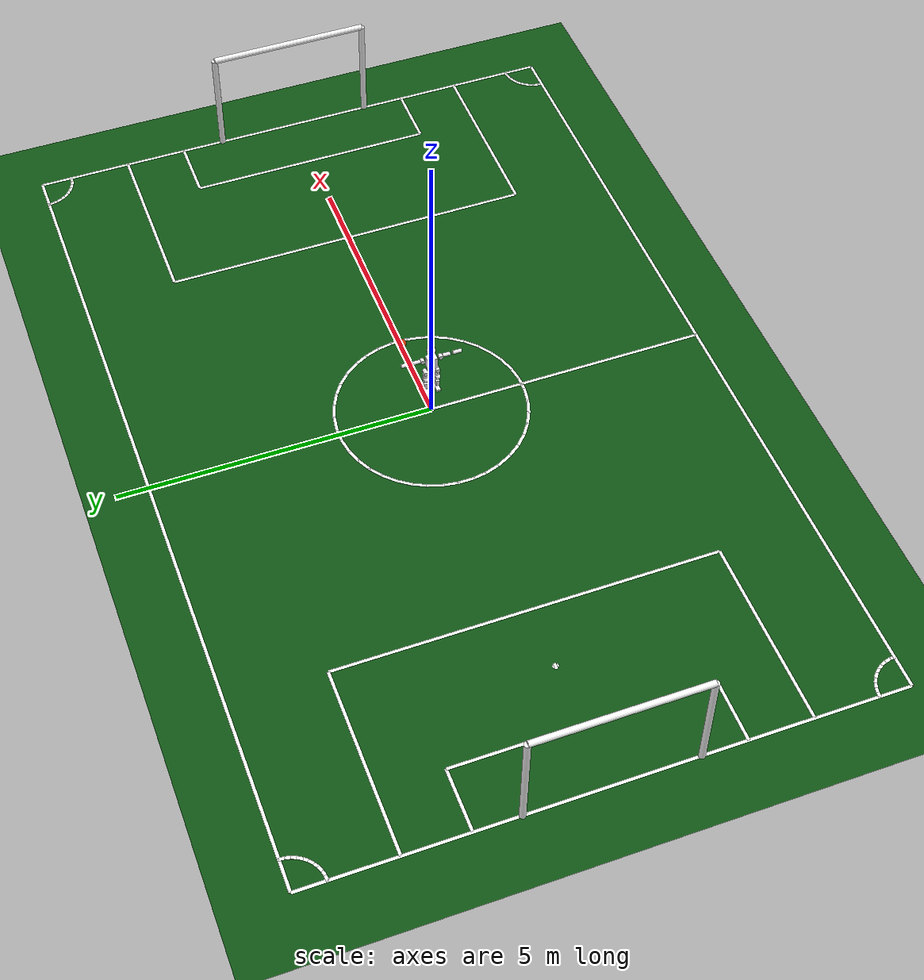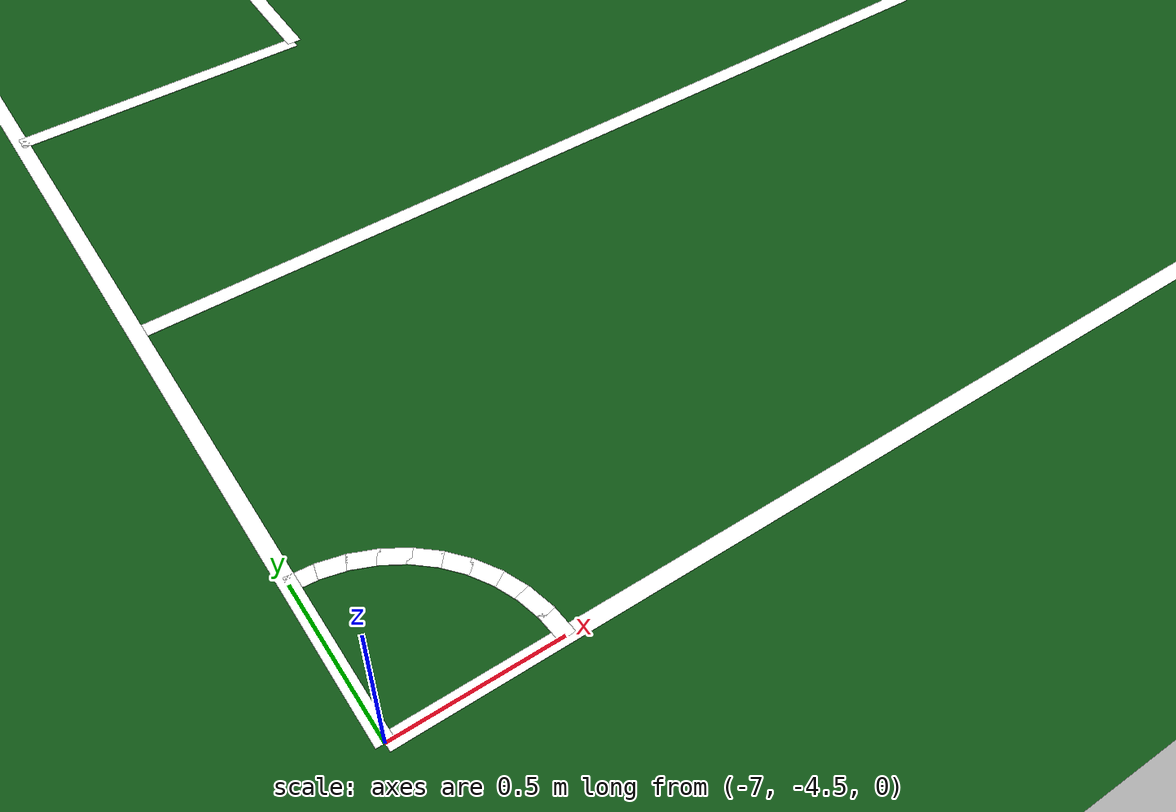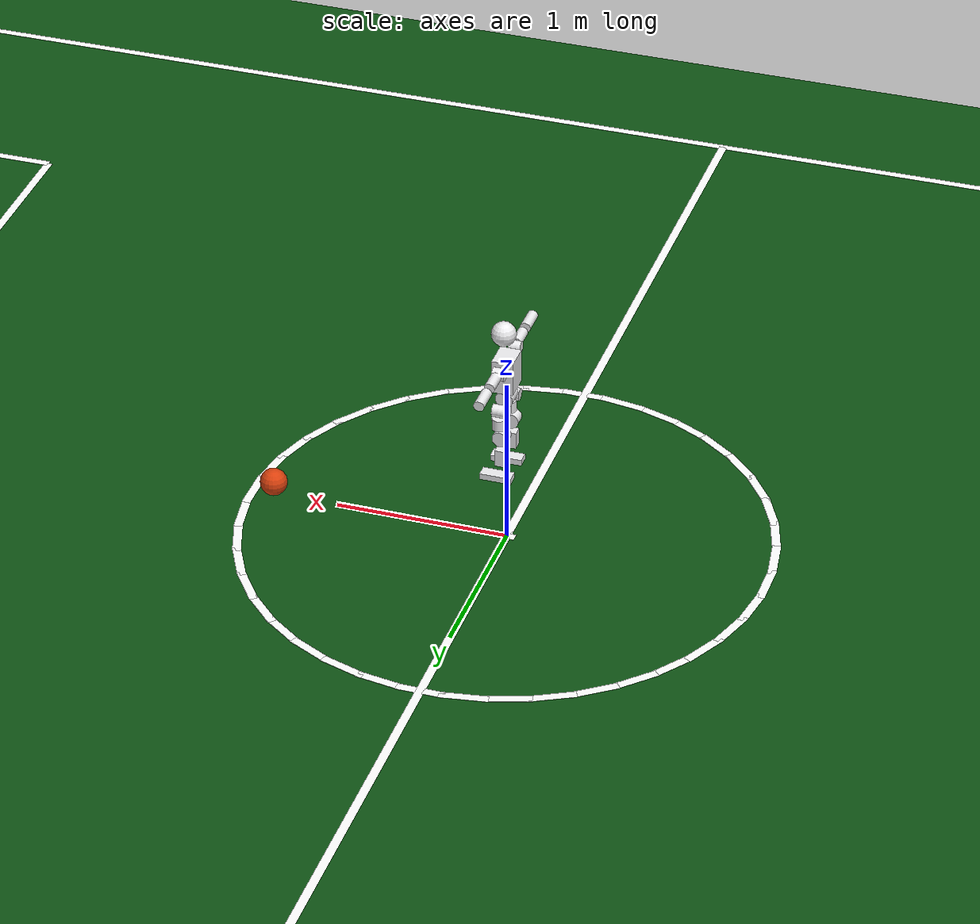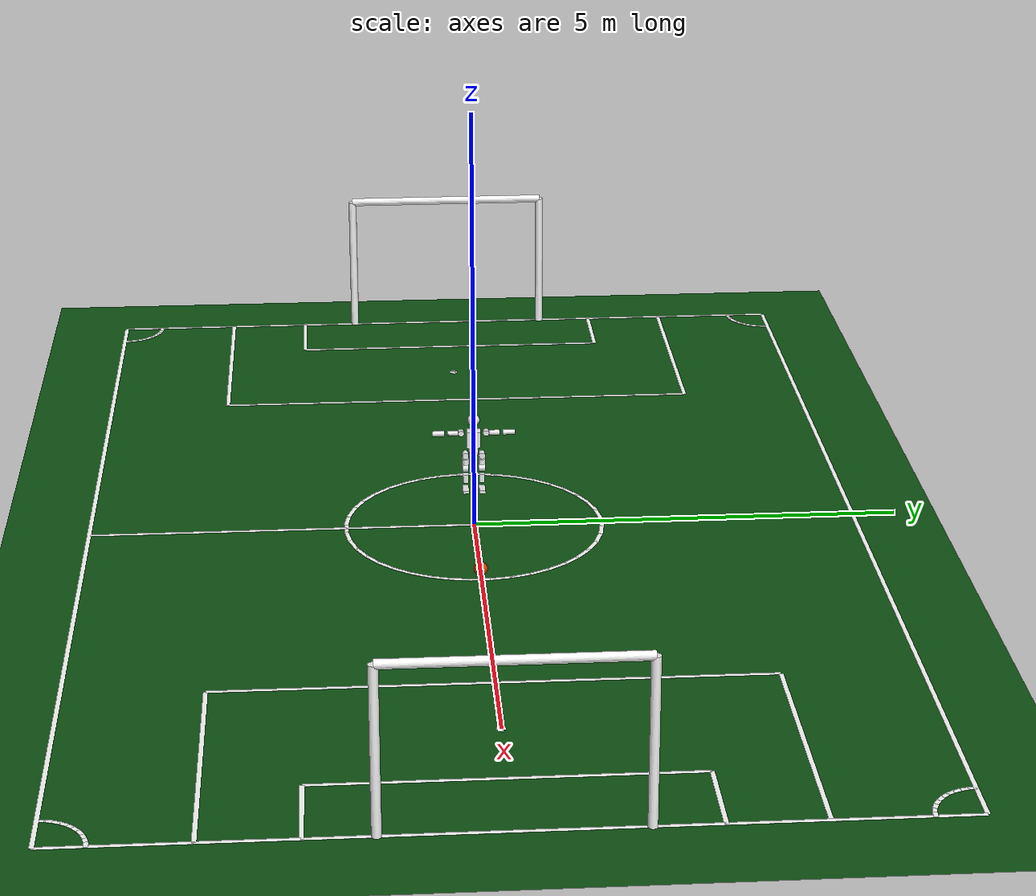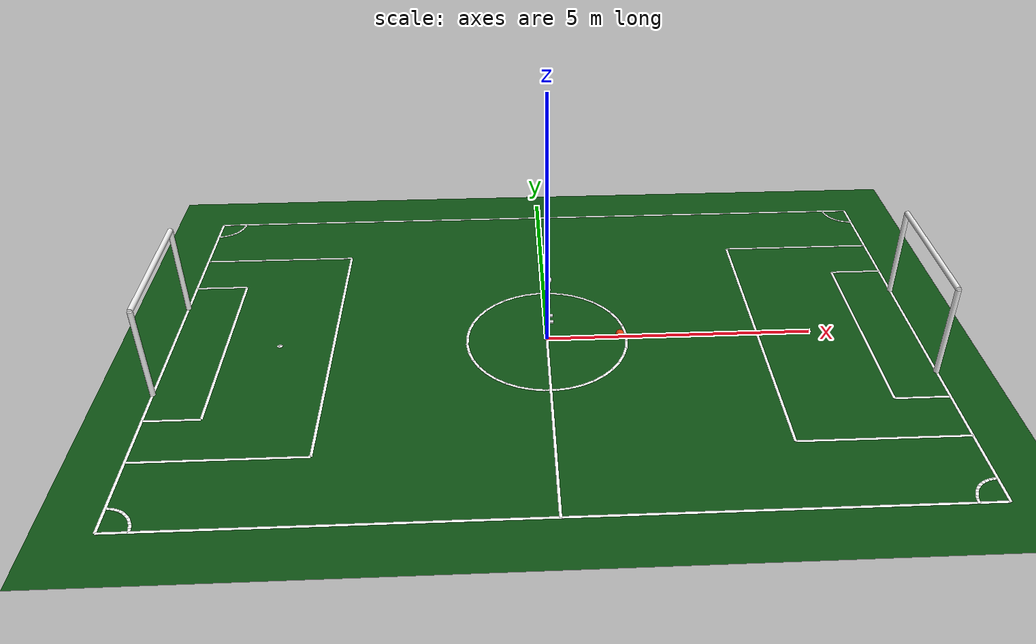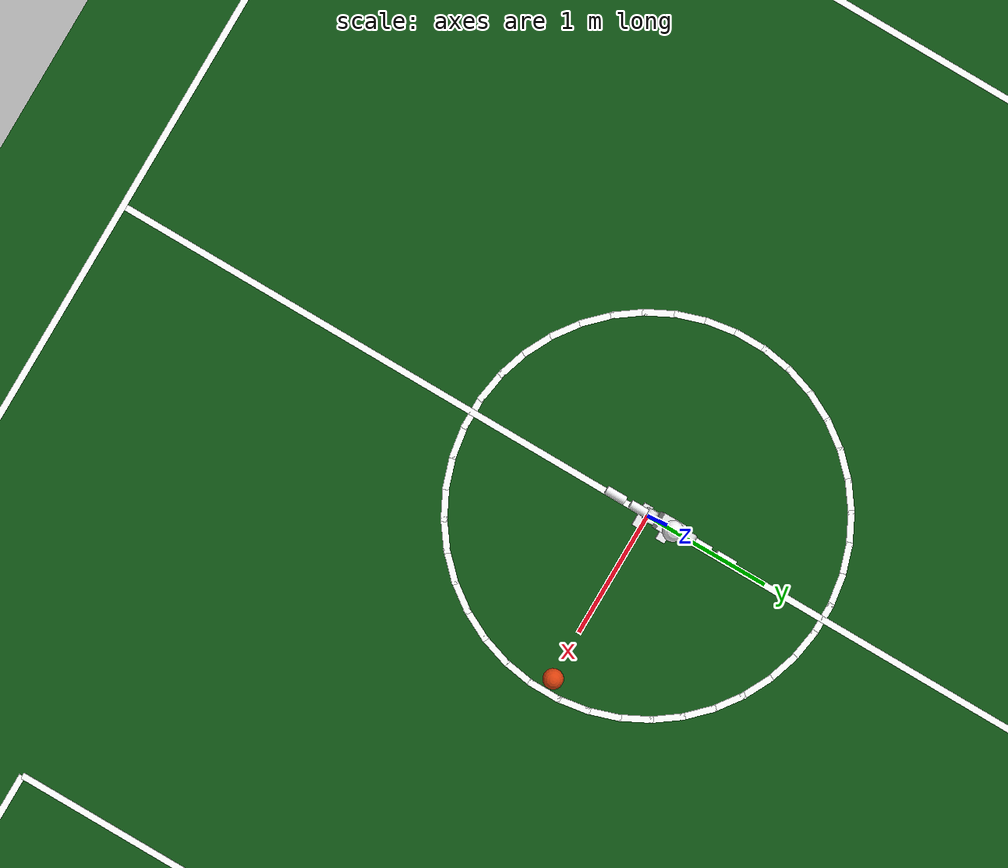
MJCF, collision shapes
<mujoco model="k1_robocup_middle_scene">
  <include file="K1_22dof.xml"/>

  <asset>
    <texture type="skybox" builtin="gradient" rgb1="0.35 0.55 0.75" rgb2="0 0 0" width="512" height="512"/>
    <texture name="grass_tex" type="2d" builtin="checker" rgb1="0.06 0.35 0.08" rgb2="0.05 0.30 0.07"
              width="300" height="300" mark="edge" markrgb="0.08 0.4 0.1"/>
    <material name="grass_mat" texture="grass_tex" texrepeat="22 16" texuniform="true" reflectance="0.05" specular="0.1"/>
    <material name="post_mat" rgba="0.95 0.95 0.95 1"/>
    <material name="ball_mat" rgba="0.85 0.25 0.05 1"/>
    <!-- NUpbr ball_001 asset (mesh normalised to unit radius in Blender, UVs preserved) -->
    <mesh name="ball_visual" file="ball_001.obj" scale="0.0785 0.0785 0.0785"/>
    <texture name="ball_tex" type="2d" file="meshes/ball_001_color.png"/>
    <material name="ball_tex_mat" texture="ball_tex" specular="0.3" shininess="0.4"/>
  </asset>

  <visual>
    <headlight ambient="0.35 0.35 0.35" diffuse="0.5 0.5 0.5" specular="0.2 0.2 0.2"/>
    <rgba haze="0.15 0.25 0.35 1"/>
  </visual>

  <worldbody>
    <light name="sun1" directional="true" pos="3 2 6" dir="-0.4 -0.3 -1" diffuse="0.7 0.7 0.65" specular="0.2 0.2 0.2" castshadow="true"/>
    <light name="sun2" directional="true" pos="-3 -2 6" dir="0.3 0.2 -1" diffuse="0.35 0.35 0.35" specular="0.05 0.05 0.05" castshadow="false"/>

    <!-- Pitch: half-size 8 x 5.5 m (16 x 11 m total = 14x9 field + 1m border). -->
    <geom name="floor" type="plane" pos="0 0 0" size="8.0 5.5 0.1" material="grass_mat" condim="3" friction="0.8 0.02 0.001"/>
    <!-- Field line markings (touchlines, goal lines, center line/circle/mark, goal areas, penalty areas, penalty marks, corner arcs). -->
      <geom type="box" pos="0.0000 4.5000 0.001" size="7.0000 0.0250 0.001" rgba="1 1 1 1" contype="0" conaffinity="0" group="2"/>
      <geom type="box" pos="0.0000 -4.5000 0.001" size="7.0000 0.0250 0.001" rgba="1 1 1 1" contype="0" conaffinity="0" group="2"/>
      <geom type="box" pos="7.0000 0.0000 0.001" size="0.0250 4.5000 0.001" rgba="1 1 1 1" contype="0" conaffinity="0" group="2"/>
      <geom type="box" pos="-7.0000 0.0000 0.001" size="0.0250 4.5000 0.001" rgba="1 1 1 1" contype="0" conaffinity="0" group="2"/>
      <geom type="box" pos="0.0000 0.0000 0.001" size="0.0250 4.5000 0.001" rgba="1 1 1 1" contype="0" conaffinity="0" group="2"/>
      <geom type="box" pos="6.0000 0.0000 0.001" size="0.0250 2.0000 0.001" rgba="1 1 1 1" contype="0" conaffinity="0" group="2"/>
      <geom type="box" pos="6.5000 2.0000 0.001" size="0.5000 0.0250 0.001" rgba="1 1 1 1" contype="0" conaffinity="0" group="2"/>
      <geom type="box" pos="6.5000 -2.0000 0.001" size="0.5000 0.0250 0.001" rgba="1 1 1 1" contype="0" conaffinity="0" group="2"/>
      <geom type="box" pos="-6.0000 0.0000 0.001" size="0.0250 2.0000 0.001" rgba="1 1 1 1" contype="0" conaffinity="0" group="2"/>
      <geom type="box" pos="-6.5000 2.0000 0.001" size="0.5000 0.0250 0.001" rgba="1 1 1 1" contype="0" conaffinity="0" group="2"/>
      <geom type="box" pos="-6.5000 -2.0000 0.001" size="0.5000 0.0250 0.001" rgba="1 1 1 1" contype="0" conaffinity="0" group="2"/>
      <geom type="box" pos="4.0000 0.0000 0.001" size="0.0250 3.0000 0.001" rgba="1 1 1 1" contype="0" conaffinity="0" group="2"/>
      <geom type="box" pos="5.5000 3.0000 0.001" size="1.5000 0.0250 0.001" rgba="1 1 1 1" contype="0" conaffinity="0" group="2"/>
      <geom type="box" pos="5.5000 -3.0000 0.001" size="1.5000 0.0250 0.001" rgba="1 1 1 1" contype="0" conaffinity="0" group="2"/>
      <geom type="box" pos="-4.0000 0.0000 0.001" size="0.0250 3.0000 0.001" rgba="1 1 1 1" contype="0" conaffinity="0" group="2"/>
      <geom type="box" pos="-5.5000 3.0000 0.001" size="1.5000 0.0250 0.001" rgba="1 1 1 1" contype="0" conaffinity="0" group="2"/>
      <geom type="box" pos="-5.5000 -3.0000 0.001" size="1.5000 0.0250 0.001" rgba="1 1 1 1" contype="0" conaffinity="0" group="2"/>
      <geom type="box" pos="1.5000 0.0000 0.001" quat="0.707107 0 0 0.707107" size="0.1355 0.0250 0.001" rgba="1 1 1 1" contype="0" conaffinity="0" group="2"/>
      <geom type="box" pos="1.4815 0.2347 0.001" quat="0.649448 0 0 0.760406" size="0.1355 0.0250 0.001" rgba="1 1 1 1" contype="0" conaffinity="0" group="2"/>
      <geom type="box" pos="1.4266 0.4635 0.001" quat="0.587785 0 0 0.809017" size="0.1355 0.0250 0.001" rgba="1 1 1 1" contype="0" conaffinity="0" group="2"/>
      <geom type="box" pos="1.3365 0.6810 0.001" quat="0.522499 0 0 0.852640" size="0.1355 0.0250 0.001" rgba="1 1 1 1" contype="0" conaffinity="0" group="2"/>
      <geom type="box" pos="1.2135 0.8817 0.001" quat="0.453990 0 0 0.891007" size="0.1355 0.0250 0.001" rgba="1 1 1 1" contype="0" conaffinity="0" group="2"/>
      <geom type="box" pos="1.0607 1.0607 0.001" quat="0.382683 0 0 0.923880" size="0.1355 0.0250 0.001" rgba="1 1 1 1" contype="0" conaffinity="0" group="2"/>
      <geom type="box" pos="0.8817 1.2135 0.001" quat="0.309017 0 0 0.951057" size="0.1355 0.0250 0.001" rgba="1 1 1 1" contype="0" conaffinity="0" group="2"/>
      <geom type="box" pos="0.6810 1.3365 0.001" quat="0.233445 0 0 0.972370" size="0.1355 0.0250 0.001" rgba="1 1 1 1" contype="0" conaffinity="0" group="2"/>
      <geom type="box" pos="0.4635 1.4266 0.001" quat="0.156434 0 0 0.987688" size="0.1355 0.0250 0.001" rgba="1 1 1 1" contype="0" conaffinity="0" group="2"/>
      <geom type="box" pos="0.2347 1.4815 0.001" quat="0.078459 0 0 0.996917" size="0.1355 0.0250 0.001" rgba="1 1 1 1" contype="0" conaffinity="0" group="2"/>
      <geom type="box" pos="0.0000 1.5000 0.001" quat="0.000000 0 0 1.000000" size="0.1355 0.0250 0.001" rgba="1 1 1 1" contype="0" conaffinity="0" group="2"/>
      <geom type="box" pos="-0.2347 1.4815 0.001" quat="-0.078459 0 0 0.996917" size="0.1355 0.0250 0.001" rgba="1 1 1 1" contype="0" conaffinity="0" group="2"/>
      <geom type="box" pos="-0.4635 1.4266 0.001" quat="-0.156434 0 0 0.987688" size="0.1355 0.0250 0.001" rgba="1 1 1 1" contype="0" conaffinity="0" group="2"/>
      <geom type="box" pos="-0.6810 1.3365 0.001" quat="-0.233445 0 0 0.972370" size="0.1355 0.0250 0.001" rgba="1 1 1 1" contype="0" conaffinity="0" group="2"/>
      <geom type="box" pos="-0.8817 1.2135 0.001" quat="-0.309017 0 0 0.951057" size="0.1355 0.0250 0.001" rgba="1 1 1 1" contype="0" conaffinity="0" group="2"/>
      <geom type="box" pos="-1.0607 1.0607 0.001" quat="-0.382683 0 0 0.923880" size="0.1355 0.0250 0.001" rgba="1 1 1 1" contype="0" conaffinity="0" group="2"/>
      <geom type="box" pos="-1.2135 0.8817 0.001" quat="-0.453990 0 0 0.891007" size="0.1355 0.0250 0.001" rgba="1 1 1 1" contype="0" conaffinity="0" group="2"/>
      <geom type="box" pos="-1.3365 0.6810 0.001" quat="-0.522499 0 0 0.852640" size="0.1355 0.0250 0.001" rgba="1 1 1 1" contype="0" conaffinity="0" group="2"/>
      <geom type="box" pos="-1.4266 0.4635 0.001" quat="-0.587785 0 0 0.809017" size="0.1355 0.0250 0.001" rgba="1 1 1 1" contype="0" conaffinity="0" group="2"/>
      <geom type="box" pos="-1.4815 0.2347 0.001" quat="-0.649448 0 0 0.760406" size="0.1355 0.0250 0.001" rgba="1 1 1 1" contype="0" conaffinity="0" group="2"/>
      <geom type="box" pos="-1.5000 0.0000 0.001" quat="-0.707107 0 0 0.707107" size="0.1355 0.0250 0.001" rgba="1 1 1 1" contype="0" conaffinity="0" group="2"/>
      <geom type="box" pos="-1.4815 -0.2347 0.001" quat="-0.760406 0 0 0.649448" size="0.1355 0.0250 0.001" rgba="1 1 1 1" contype="0" conaffinity="0" group="2"/>
      <geom type="box" pos="-1.4266 -0.4635 0.001" quat="-0.809017 0 0 0.587785" size="0.1355 0.0250 0.001" rgba="1 1 1 1" contype="0" conaffinity="0" group="2"/>
      <geom type="box" pos="-1.3365 -0.6810 0.001" quat="-0.852640 0 0 0.522499" size="0.1355 0.0250 0.001" rgba="1 1 1 1" contype="0" conaffinity="0" group="2"/>
      <geom type="box" pos="-1.2135 -0.8817 0.001" quat="-0.891007 0 0 0.453990" size="0.1355 0.0250 0.001" rgba="1 1 1 1" contype="0" conaffinity="0" group="2"/>
      <geom type="box" pos="-1.0607 -1.0607 0.001" quat="-0.923880 0 0 0.382683" size="0.1355 0.0250 0.001" rgba="1 1 1 1" contype="0" conaffinity="0" group="2"/>
      <geom type="box" pos="-0.8817 -1.2135 0.001" quat="-0.951057 0 0 0.309017" size="0.1355 0.0250 0.001" rgba="1 1 1 1" contype="0" conaffinity="0" group="2"/>
      <geom type="box" pos="-0.6810 -1.3365 0.001" quat="-0.972370 0 0 0.233445" size="0.1355 0.0250 0.001" rgba="1 1 1 1" contype="0" conaffinity="0" group="2"/>
      <geom type="box" pos="-0.4635 -1.4266 0.001" quat="-0.987688 0 0 0.156434" size="0.1355 0.0250 0.001" rgba="1 1 1 1" contype="0" conaffinity="0" group="2"/>
      <geom type="box" pos="-0.2347 -1.4815 0.001" quat="-0.996917 0 0 0.078459" size="0.1355 0.0250 0.001" rgba="1 1 1 1" contype="0" conaffinity="0" group="2"/>
      <geom type="box" pos="-0.0000 -1.5000 0.001" quat="-1.000000 0 0 0.000000" size="0.1355 0.0250 0.001" rgba="1 1 1 1" contype="0" conaffinity="0" group="2"/>
      <geom type="box" pos="0.2347 -1.4815 0.001" quat="-0.996917 0 0 -0.078459" size="0.1355 0.0250 0.001" rgba="1 1 1 1" contype="0" conaffinity="0" group="2"/>
      <geom type="box" pos="0.4635 -1.4266 0.001" quat="-0.987688 0 0 -0.156434" size="0.1355 0.0250 0.001" rgba="1 1 1 1" contype="0" conaffinity="0" group="2"/>
      <geom type="box" pos="0.6810 -1.3365 0.001" quat="-0.972370 0 0 -0.233445" size="0.1355 0.0250 0.001" rgba="1 1 1 1" contype="0" conaffinity="0" group="2"/>
      <geom type="box" pos="0.8817 -1.2135 0.001" quat="-0.951057 0 0 -0.309017" size="0.1355 0.0250 0.001" rgba="1 1 1 1" contype="0" conaffinity="0" group="2"/>
      <geom type="box" pos="1.0607 -1.0607 0.001" quat="-0.923880 0 0 -0.382683" size="0.1355 0.0250 0.001" rgba="1 1 1 1" contype="0" conaffinity="0" group="2"/>
      <geom type="box" pos="1.2135 -0.8817 0.001" quat="-0.891007 0 0 -0.453990" size="0.1355 0.0250 0.001" rgba="1 1 1 1" contype="0" conaffinity="0" group="2"/>
      <geom type="box" pos="1.3365 -0.6810 0.001" quat="-0.852640 0 0 -0.522499" size="0.1355 0.0250 0.001" rgba="1 1 1 1" contype="0" conaffinity="0" group="2"/>
      <geom type="box" pos="1.4266 -0.4635 0.001" quat="-0.809017 0 0 -0.587785" size="0.1355 0.0250 0.001" rgba="1 1 1 1" contype="0" conaffinity="0" group="2"/>
      <geom type="box" pos="1.4815 -0.2347 0.001" quat="-0.760406 0 0 -0.649448" size="0.1355 0.0250 0.001" rgba="1 1 1 1" contype="0" conaffinity="0" group="2"/>
      <geom type="box" pos="0 0 0.001" size="0.0500 0.0250 0.001" rgba="1 1 1 1" contype="0" conaffinity="0" group="2"/>
      <geom type="box" pos="0 0 0.001" size="0.0250 0.0500 0.001" rgba="1 1 1 1" contype="0" conaffinity="0" group="2"/>
      <geom type="box" pos="5.0000 0 0.001" size="0.0500 0.0250 0.001" rgba="1 1 1 1" contype="0" conaffinity="0" group="2"/>
      <geom type="box" pos="5.0000 0 0.001" size="0.0250 0.0500 0.001" rgba="1 1 1 1" contype="0" conaffinity="0" group="2"/>
      <geom type="box" pos="-5.0000 0 0.001" size="0.0500 0.0250 0.001" rgba="1 1 1 1" contype="0" conaffinity="0" group="2"/>
      <geom type="box" pos="-5.0000 0 0.001" size="0.0250 0.0500 0.001" rgba="1 1 1 1" contype="0" conaffinity="0" group="2"/>
      <geom type="box" pos="6.5015 4.4608 0.001" quat="0.734323 0 0 -0.678801" size="0.0452 0.0250 0.001" rgba="1 1 1 1" contype="0" conaffinity="0" group="2"/>
      <geom type="box" pos="6.5138 4.3833 0.001" quat="0.785317 0 0 -0.619094" size="0.0452 0.0250 0.001" rgba="1 1 1 1" contype="0" conaffinity="0" group="2"/>
      <geom type="box" pos="6.5381 4.3087 0.001" quat="0.831470 0 0 -0.555570" size="0.0452 0.0250 0.001" rgba="1 1 1 1" contype="0" conaffinity="0" group="2"/>
      <geom type="box" pos="6.5737 4.2388 0.001" quat="0.872496 0 0 -0.488621" size="0.0452 0.0250 0.001" rgba="1 1 1 1" contype="0" conaffinity="0" group="2"/>
      <geom type="box" pos="6.6198 4.1753 0.001" quat="0.908143 0 0 -0.418660" size="0.0452 0.0250 0.001" rgba="1 1 1 1" contype="0" conaffinity="0" group="2"/>
      <geom type="box" pos="6.6753 4.1198 0.001" quat="0.938191 0 0 -0.346117" size="0.0452 0.0250 0.001" rgba="1 1 1 1" contype="0" conaffinity="0" group="2"/>
      <geom type="box" pos="6.7388 4.0737 0.001" quat="0.962455 0 0 -0.271440" size="0.0452 0.0250 0.001" rgba="1 1 1 1" contype="0" conaffinity="0" group="2"/>
      <geom type="box" pos="6.8087 4.0381 0.001" quat="0.980785 0 0 -0.195090" size="0.0452 0.0250 0.001" rgba="1 1 1 1" contype="0" conaffinity="0" group="2"/>
      <geom type="box" pos="6.8833 4.0138 0.001" quat="0.993068 0 0 -0.117537" size="0.0452 0.0250 0.001" rgba="1 1 1 1" contype="0" conaffinity="0" group="2"/>
      <geom type="box" pos="6.9608 4.0015 0.001" quat="0.999229 0 0 -0.039260" size="0.0452 0.0250 0.001" rgba="1 1 1 1" contype="0" conaffinity="0" group="2"/>
      <geom type="box" pos="-6.9608 4.0015 0.001" quat="0.999229 0 0 0.039260" size="0.0452 0.0250 0.001" rgba="1 1 1 1" contype="0" conaffinity="0" group="2"/>
      <geom type="box" pos="-6.8833 4.0138 0.001" quat="0.993068 0 0 0.117537" size="0.0452 0.0250 0.001" rgba="1 1 1 1" contype="0" conaffinity="0" group="2"/>
      <geom type="box" pos="-6.8087 4.0381 0.001" quat="0.980785 0 0 0.195090" size="0.0452 0.0250 0.001" rgba="1 1 1 1" contype="0" conaffinity="0" group="2"/>
      <geom type="box" pos="-6.7388 4.0737 0.001" quat="0.962455 0 0 0.271440" size="0.0452 0.0250 0.001" rgba="1 1 1 1" contype="0" conaffinity="0" group="2"/>
      <geom type="box" pos="-6.6753 4.1198 0.001" quat="0.938191 0 0 0.346117" size="0.0452 0.0250 0.001" rgba="1 1 1 1" contype="0" conaffinity="0" group="2"/>
      <geom type="box" pos="-6.6198 4.1753 0.001" quat="0.908143 0 0 0.418660" size="0.0452 0.0250 0.001" rgba="1 1 1 1" contype="0" conaffinity="0" group="2"/>
      <geom type="box" pos="-6.5737 4.2388 0.001" quat="0.872496 0 0 0.488621" size="0.0452 0.0250 0.001" rgba="1 1 1 1" contype="0" conaffinity="0" group="2"/>
      <geom type="box" pos="-6.5381 4.3087 0.001" quat="0.831470 0 0 0.555570" size="0.0452 0.0250 0.001" rgba="1 1 1 1" contype="0" conaffinity="0" group="2"/>
      <geom type="box" pos="-6.5138 4.3833 0.001" quat="0.785317 0 0 0.619094" size="0.0452 0.0250 0.001" rgba="1 1 1 1" contype="0" conaffinity="0" group="2"/>
      <geom type="box" pos="-6.5015 4.4608 0.001" quat="0.734323 0 0 0.678801" size="0.0452 0.0250 0.001" rgba="1 1 1 1" contype="0" conaffinity="0" group="2"/>
      <geom type="box" pos="-6.5015 -4.4608 0.001" quat="0.678801 0 0 0.734323" size="0.0452 0.0250 0.001" rgba="1 1 1 1" contype="0" conaffinity="0" group="2"/>
      <geom type="box" pos="-6.5138 -4.3833 0.001" quat="0.619094 0 0 0.785317" size="0.0452 0.0250 0.001" rgba="1 1 1 1" contype="0" conaffinity="0" group="2"/>
      <geom type="box" pos="-6.5381 -4.3087 0.001" quat="0.555570 0 0 0.831470" size="0.0452 0.0250 0.001" rgba="1 1 1 1" contype="0" conaffinity="0" group="2"/>
      <geom type="box" pos="-6.5737 -4.2388 0.001" quat="0.488621 0 0 0.872496" size="0.0452 0.0250 0.001" rgba="1 1 1 1" contype="0" conaffinity="0" group="2"/>
      <geom type="box" pos="-6.6198 -4.1753 0.001" quat="0.418660 0 0 0.908143" size="0.0452 0.0250 0.001" rgba="1 1 1 1" contype="0" conaffinity="0" group="2"/>
      <geom type="box" pos="-6.6753 -4.1198 0.001" quat="0.346117 0 0 0.938191" size="0.0452 0.0250 0.001" rgba="1 1 1 1" contype="0" conaffinity="0" group="2"/>
      <geom type="box" pos="-6.7388 -4.0737 0.001" quat="0.271440 0 0 0.962455" size="0.0452 0.0250 0.001" rgba="1 1 1 1" contype="0" conaffinity="0" group="2"/>
      <geom type="box" pos="-6.8087 -4.0381 0.001" quat="0.195090 0 0 0.980785" size="0.0452 0.0250 0.001" rgba="1 1 1 1" contype="0" conaffinity="0" group="2"/>
      <geom type="box" pos="-6.8833 -4.0138 0.001" quat="0.117537 0 0 0.993068" size="0.0452 0.0250 0.001" rgba="1 1 1 1" contype="0" conaffinity="0" group="2"/>
      <geom type="box" pos="-6.9608 -4.0015 0.001" quat="0.039260 0 0 0.999229" size="0.0452 0.0250 0.001" rgba="1 1 1 1" contype="0" conaffinity="0" group="2"/>
      <geom type="box" pos="6.9608 -4.0015 0.001" quat="-0.039260 0 0 0.999229" size="0.0452 0.0250 0.001" rgba="1 1 1 1" contype="0" conaffinity="0" group="2"/>
      <geom type="box" pos="6.8833 -4.0138 0.001" quat="-0.117537 0 0 0.993068" size="0.0452 0.0250 0.001" rgba="1 1 1 1" contype="0" conaffinity="0" group="2"/>
      <geom type="box" pos="6.8087 -4.0381 0.001" quat="-0.195090 0 0 0.980785" size="0.0452 0.0250 0.001" rgba="1 1 1 1" contype="0" conaffinity="0" group="2"/>
      <geom type="box" pos="6.7388 -4.0737 0.001" quat="-0.271440 0 0 0.962455" size="0.0452 0.0250 0.001" rgba="1 1 1 1" contype="0" conaffinity="0" group="2"/>
      <geom type="box" pos="6.6753 -4.1198 0.001" quat="-0.346117 0 0 0.938191" size="0.0452 0.0250 0.001" rgba="1 1 1 1" contype="0" conaffinity="0" group="2"/>
      <geom type="box" pos="6.6198 -4.1753 0.001" quat="-0.418660 0 0 0.908143" size="0.0452 0.0250 0.001" rgba="1 1 1 1" contype="0" conaffinity="0" group="2"/>
      <geom type="box" pos="6.5737 -4.2388 0.001" quat="-0.488621 0 0 0.872496" size="0.0452 0.0250 0.001" rgba="1 1 1 1" contype="0" conaffinity="0" group="2"/>
      <geom type="box" pos="6.5381 -4.3087 0.001" quat="-0.555570 0 0 0.831470" size="0.0452 0.0250 0.001" rgba="1 1 1 1" contype="0" conaffinity="0" group="2"/>
      <geom type="box" pos="6.5138 -4.3833 0.001" quat="-0.619094 0 0 0.785317" size="0.0452 0.0250 0.001" rgba="1 1 1 1" contype="0" conaffinity="0" group="2"/>
      <geom type="box" pos="6.5015 -4.4608 0.001" quat="-0.678801 0 0 0.734323" size="0.0452 0.0250 0.001" rgba="1 1 1 1" contype="0" conaffinity="0" group="2"/>

    <!-- Goals: HSL M-Field, 2.6 m wide (post-center to post-center), 1.8 m high, post radius 0.05 m, at x=+-7. -->
    <body name="goal_pos_x" pos="7 0 0">
      <geom name="goal_pos_x_post1" type="cylinder" fromto="0 1.3 0  0 1.3 1.8" size="0.05" material="post_mat" contype="1" conaffinity="1"/>
      <geom name="goal_pos_x_post2" type="cylinder" fromto="0 -1.3 0  0 -1.3 1.8" size="0.05" material="post_mat" contype="1" conaffinity="1"/>
      <geom name="goal_pos_x_bar" type="cylinder" fromto="0 -1.3 1.8  0 1.3 1.8" size="0.05" material="post_mat" contype="1" conaffinity="1"/>
    </body>
    <body name="goal_neg_x" pos="-7 0 0">
      <geom name="goal_neg_x_post1" type="cylinder" fromto="0 1.3 0  0 1.3 1.8" size="0.05" material="post_mat" contype="1" conaffinity="1"/>
      <geom name="goal_neg_x_post2" type="cylinder" fromto="0 -1.3 0  0 -1.3 1.8" size="0.05" material="post_mat" contype="1" conaffinity="1"/>
      <geom name="goal_neg_x_bar" type="cylinder" fromto="0 -1.3 1.8  0 1.3 1.8" size="0.05" material="post_mat" contype="1" conaffinity="1"/>
    </body>

    <body name="ball" pos="0 0 0">
      <freejoint name="ball_free"/>
      <!-- Collision sphere kept invisible (group 3); visuals come from the textured
           NUpbr ball mesh below so rendered imagery matches the Yolo training data. -->
      <geom name="ball" type="sphere" size="0.0785" pos="1.38 0 0.0785" mass="0.29"
            friction="0.5 0.005 0.0001" material="ball_mat" priority="1"
            group="3" rgba="0.85 0.25 0.05 0"/>
      <geom type="mesh" mesh="ball_visual" pos="1.38 0 0.0785" material="ball_tex_mat"
            contype="0" conaffinity="0" density="0" group="1"/>
    </body>
  </worldbody>

  <contact>
    <pair geom1="ball" geom2="floor" condim="6" friction="0.5 0.5 0.005 0.01 0.01" solref="0.02 0.11" solimp="0.9 0.95 0.001 0.5 2"/>
  </contact>

  <keyframe>
    <key name="kickoff"
         qpos="-3.0 0 0.555 1 0 0 0
               0 0
               0 -1.3 0 0
               0 1.3 0 0
               0 0 0 0 0 0
               0 0 0 0 0 0"/>
    <key name="own_bottom_left"
         qpos="-6.0 -4.0 0.555 1 0 0 0
               0 0
               0 -1.3 0 0
               0 1.3 0 0
               0 0 0 0 0 0
               0 0 0 0 0 0"/>
    <key name="goalie"
         qpos="-6.8 0 0.555 1 0 0 0
               0 0
               0 -1.3 0 0
               0 1.3 0 0
               0 0 0 0 0 0
               0 0 0 0 0 0"/>
  </keyframe>
</mujoco>

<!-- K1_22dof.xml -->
<mujoco model="K1">
  <compiler angle="radian" meshdir="meshes/" autolimits="true"/>

  <option timestep="0.001" tolerance="1e-6" impratio="10" solver="Newton"/>
  <default>
    <geom solimp="0.90 0.95 0.001" solref="0.001 1"/>
  </default>

  <asset>
    <mesh name="Trunk" file="Trunk.STL"/>
    <mesh name="K1logo" file="K1logo.STL"/>
    <mesh name="Head_1" file="Head_1.STL"/>
    <mesh name="Head_2" file="Head_2.STL"/>
    <mesh name="Left_Arm_1" file="Left_Arm_1.STL"/>
    <mesh name="Left_Arm_2" file="Left_Arm_2.STL"/>
    <mesh name="Left_Arm_3" file="Left_Arm_3.STL"/>
    <mesh name="Left_Arm_4" file="Left_Arm_4.STL"/>
    <mesh name="Right_Arm_1" file="Right_Arm_1.STL"/>
    <mesh name="Right_Arm_2" file="Right_Arm_2.STL"/>
    <mesh name="Right_Arm_3" file="Right_Arm_3.STL"/>
    <mesh name="Right_Arm_4" file="Right_Arm_4.STL"/>
    <mesh name="Left_Hip_Pitch" file="Left_Hip_Pitch.STL"/>
    <mesh name="Left_Hip_Roll" file="Left_Hip_Roll.STL"/>
    <mesh name="Left_Hip_Yaw" file="Left_Hip_Yaw.STL"/>
    <mesh name="Left_Shank" file="Left_Shank.STL"/>
    <mesh name="Left_Ankle_Cross" file="Left_Ankle_Cross.STL"/>
    <mesh name="Left_Foot" file="Left_Foot.STL"/>
    <mesh name="Right_Hip_Pitch" file="Right_Hip_Pitch.STL"/>
    <mesh name="Right_Hip_Roll" file="Right_Hip_Roll.STL"/>
    <mesh name="Right_Hip_Yaw" file="Right_Hip_Yaw.STL"/>
    <mesh name="Right_Shank" file="Right_Shank.STL"/>
    <mesh name="Right_Ankle_Cross" file="Right_Ankle_Cross.STL"/>
    <mesh name="Right_Foot" file="Right_Foot.STL"/>
  </asset>

  <worldbody>
    <body name="Trunk" pos="0 0 1.0">
      <freejoint name="root"/>
      <site name='imu' size='0.01' pos='0.0 0.0 0.0' />
      <inertial pos="-0.0043392 -0.00065534 0.065686" quat="0.999896 -0.00411546 0.0137413 -0.00168959" mass="6.5" diaginertia="0.0962166 0.0895166 0.0201248"/>
      <geom type="mesh" contype="0" conaffinity="0" group="1" density="0" rgba="0.92 0.92 0.93 1" mesh="Trunk"/>
      <geom contype="2" conaffinity="1" size="0.06 0.08 0.1" pos="0 0 0.1" type="box" rgba="0.92 0.92 0.93 0.0"/>
      <geom contype="2" conaffinity="1" size="0.05 0.05" pos="0 0 -0.06" quat="0.707105 0.707108 0 0" type="cylinder" rgba="0.92 0.92 0.93 1"/>
      <geom type="mesh" contype="0" conaffinity="0" group="1" density="0" rgba="0.792156862745098 0.819607843137255 0.933333333333333 1" mesh="K1logo"/>
      <body name="Head_1" pos="0.0056 0 0.2149">
        <inertial pos="-0.00069503 -0.00038527 0.031688" quat="0.993827 -0.00957801 0.00894723 -0.110168" mass="0.3" diaginertia="0.000429546 0.000420659 0.000125795"/>
        <joint name="AAHead_yaw" pos="0 0 0" axis="0 0 1" range="-1 1" armature="0.002"/>
        <geom type="mesh" contype="0" conaffinity="0" group="1" density="0" rgba="0.12 0.12 0.13 1" mesh="Head_1"/>

        <body name="Head_2" pos="0 0 0.033">
          <inertial pos="0.011042 -0.00092871 0.080698" quat="0.996402 -0.00118413 -0.0779414 -0.0332651" mass="0.7" diaginertia="0.00603249 0.00577511 0.0017024"/>
          <joint name="Head_pitch" pos="0 0 0" axis="0 1 0" range="-0.349 0.855" armature="0.002"/>
          <geom type="mesh" contype="0" conaffinity="0" group="1" density="0" rgba="0.12 0.12 0.13 1" mesh="Head_2"/>
          <geom size="0.07" pos="0.01 0 0.09" type="sphere" contype="2" conaffinity="1" rgba="0.92 0.92 0.93 0.0"/>
          <camera name="head" pos="0.075 0 0.089" xyaxes="0 -1 0  0 0 1" fovy="95.7"/>
        </body>
      </body>
      <body name="Left_Arm_1" pos="0 0.077 0.1845">
        <inertial pos="-0.002701 0.062383 -0.011965" quat="0.578658 0.689818 -0.347436 0.261905" mass="0.5" diaginertia="0.00223871 0.00217107 0.000254225"/>
        <joint name="ALeft_Shoulder_Pitch" pos="0 0 0" axis="0 1 0" range="-3.316 1.22" armature="0.001"/>
        <geom type="mesh" contype="0" conaffinity="0" group="1" density="0" rgba="0.12 0.12 0.13 1" mesh="Left_Arm_1"/>
        <body name="Left_Arm_2" pos="0.0025 0.068 -0.0135">
          <inertial pos="0.01729 0.018221 -4.329e-05" quat="0.413453 0.573635 -0.413453 0.573635" mass="0.09" diaginertia="0.000113 9.5e-05 6.5e-05"/>
          <joint name="Left_Shoulder_Roll" pos="0 0 0" axis="1 0 0" range="-1.74 1.57" armature="0.001"/>
          <geom type="mesh" contype="0" conaffinity="0" group="1" density="0" rgba="0.12 0.12 0.13 1" mesh="Left_Arm_2"/>
          <geom contype="2" conaffinity="1" size="0.035 0.034" pos="-0.007 0 0" quat="0.707105 0 0.707108 0" type="cylinder" rgba="0.92 0.92 0.93 1"/>
          <body name="Left_Arm_3" pos="0 0.044428 0">
            <inertial pos="-0.0003979 0.072617 -0.00066218" quat="0.679502 0.689551 0.177403 -0.176989" mass="0.8" diaginertia="0.00606947 0.00606767 0.000385851"/>
            <joint name="Left_Elbow_Pitch" pos="0 0 0" axis="0 1 0" range="-2.27 2.27" armature="0.001"/>
            <geom type="mesh" contype="0" conaffinity="0" group="1" density="0" rgba="0.12 0.12 0.13 1" mesh="Left_Arm_3"/>
            <geom size="0.03 0.06" pos="0 0.05 0" quat="0.707105 0.707108 0 0" type="cylinder" contype="2" conaffinity="1" rgba="0.92 0.92 0.93 0.0"/>
            <body name="left_hand_link" pos="0 0.1215 0">
              <inertial pos="-0.0015751 0.084637 0.0087033" quat="0.712106 0.700961 0.0264125 -0.0293496" mass="0.19" diaginertia="0.00205619 0.00202933 8.1482e-05"/>
              <joint name="Left_Elbow_Yaw" pos="0 0 0" axis="0 0 1" range="-2.44 0" armature="0.001"/>
              <geom type="mesh" contype="0" conaffinity="0" group="1" density="0" rgba="0.12 0.12 0.13 1" mesh="Left_Arm_4"/>
              <geom size="0.03 0.07" pos="0 0.1 0" quat="0.707105 0.707108 0 0" type="cylinder" contype="2" conaffinity="1" rgba="0.92 0.92 0.93 0.0"/>
            </body>
          </body>
        </body>
      </body>
      <body name="Right_Arm_1" pos="0 -0.077 0.1845">
        <inertial pos="-0.0026302 -0.06251 -0.01199" quat="0.689302 0.577958 -0.263425 0.348475" mass="0.5" diaginertia="0.00224439 0.00217742 0.000255199"/>
        <joint name="ARight_Shoulder_Pitch" pos="0 0 0" axis="0 1 0" range="-3.316 1.22" armature="0.001"/>
        <geom type="mesh" contype="0" conaffinity="0" group="1" density="0" rgba="0.12 0.12 0.13 1" mesh="Right_Arm_1"/>
        <body name="Right_Arm_2" pos="0.0025 -0.068 -0.0135">
          <inertial pos="0.017229 -0.018428 4.3784e-05" quat="0.573635 0.413453 -0.573635 0.413453" mass="0.09" diaginertia="0.000113 9.5e-05 6.5e-05"/>
          <joint name="Right_Shoulder_Roll" pos="0 0 0" axis="1 0 0" range="-1.57 1.74" armature="0.001"/>
          <geom type="mesh" contype="0" conaffinity="0" group="1" density="0" rgba="0.12 0.12 0.13 1" mesh="Right_Arm_2"/>
          <geom contype="2" conaffinity="1" size="0.035 0.034" pos="-0.007 0 0" quat="0.707105 0 0.707108 0" type="cylinder" rgba="0.92 0.92 0.93 1"/>
          <body name="Right_Arm_3" pos="0 -0.044428 0">
            <inertial pos="-0.00039919 -0.072601 -0.00065629" quat="0.689551 0.679502 0.176989 -0.177403" mass="0.8" diaginertia="0.00607047 0.00606867 0.000386851"/>
            <joint name="Right_Elbow_Pitch" pos="0 0 0" axis="0 1 0" range="-2.27 2.27" armature="0.001"/>
            <geom type="mesh" contype="0" conaffinity="0" group="1" density="0" rgba="0.12 0.12 0.13 1" mesh="Right_Arm_3"/>
            <geom size="0.03 0.06" pos="0 -0.05 0" quat="0.707105 0.707108 0 0" type="cylinder" contype="2" conaffinity="1" rgba="0.92 0.92 0.93 0.0"/>
            <body name="right_hand_link" pos="0 -0.1215 0">
              <inertial pos="-0.0015177 -0.084536 0.0086733" quat="0.700925 0.712091 0.0296562 -0.0274245" mass="0.19" diaginertia="0.00205618 0.00203032 8.14943e-05"/>
              <joint name="Right_Elbow_Yaw" pos="0 0 0" axis="0 0 1" range="0 2.44" armature="0.001"/>
              <geom type="mesh" contype="0" conaffinity="0" group="1" density="0" rgba="0.12 0.12 0.13 1" mesh="Right_Arm_4"/>
              <geom size="0.03 0.07" pos="0 -0.1 0" quat="0.707105 0.707108 0 0" type="cylinder" contype="2" conaffinity="1" rgba="0.92 0.92 0.93 0.0"/>
            </body>
          </body>
        </body>
      </body>
      <body name="Left_Hip_Pitch" pos="0 0.096 -0.077">
        <inertial pos="-0.010093 -0.0019934 -0.024713" quat="0.704206 -0.178798 -0.198986 0.65767" mass="0.69" diaginertia="0.000987585 0.000880963 0.000503452"/>
        <joint name="Left_Hip_Pitch" pos="0 0 0" axis="0 1 0" range="-3 2.21" armature="0.0478125"/>
        <geom type="mesh" contype="0" conaffinity="0" group="1" density="0" rgba="0.12 0.12 0.13 1" mesh="Left_Hip_Pitch"/>
        <body name="Left_Hip_Roll" pos="0 0 -0.026">
          <inertial pos="0.023585 4.9e-05 -0.024996" quat="0.677218 0.203412 0.203412 0.677218" mass="0.13" diaginertia="0.000262 0.000222694 0.000118306"/>
          <joint name="Left_Hip_Roll" pos="0 0 0" axis="1 0 0" range="-0.4 1.57" armature="0.0339552"/>
          <geom type="mesh" contype="0" conaffinity="0" group="1" density="0" rgba="0.12 0.12 0.13 1" mesh="Left_Hip_Roll"/>
          <geom contype="2" conaffinity="1" size="0.036 0.047" quat="0.707105 0 0.707108 0" type="cylinder" rgba="0.92 0.92 0.93 1"/>
          <body name="Left_Hip_Yaw" pos="0.012 0 -0.0485">
            <inertial pos="-0.0084744 -0.0040494 -0.087906" quat="0.857995 -0.00590801 -0.0582713 0.510308" mass="1.65" diaginertia="0.0162716 0.0158564 0.00134895"/>
            <joint name="Left_Hip_Yaw" pos="0 0 0" axis="0 0 1" range="-1 1" armature="0.0282528"/>
            <geom type="mesh" contype="0" conaffinity="0" group="1" density="0" rgba="0.12 0.12 0.13 1" mesh="Left_Hip_Yaw"/>
            <geom contype="2" conaffinity="1" size="0.04 0.033" pos="0 0 -0.03" type="cylinder" rgba="0.92 0.92 0.93 1"/>
            <body name="Left_Shank" pos="-0.014 0 -0.117">
              <inertial pos="-0.00081083 0.0031459 -0.10922" quat="0.940563 -0.00388906 -0.00385774 0.339574" mass="1.5" diaginertia="0.0237114 0.0236423 0.00123731"/>
              <joint name="Left_Knee_Pitch" pos="0 0 0" axis="0 1 0" range="0 2.23" armature="0.095625"/>
              <geom type="mesh" contype="0" conaffinity="0" group="1" density="0" rgba="0.12 0.12 0.13 1" mesh="Left_Shank"/>
              <geom contype="2" conaffinity="1" size="0.045 0.035" quat="0.707105 0.707108 0 0" type="cylinder" rgba="0.92 0.92 0.93 1"/>
              <geom contype="2" conaffinity="1" size="0.03 0.03 0.05" pos="0 0 -0.13" type="box" rgba="0.92 0.92 0.93 1"/>
              <body name="Left_Ankle_Cross" pos="0.00019706 0.0002 -0.24519">
                <inertial pos="0 0 0" quat="0.5 0.5 0.5 0.5" mass="0.039" diaginertia="4e-06 4e-06 2e-06"/>
                <joint name="Left_Ankle_Pitch" pos="0 0 0" axis="0 1 0" range="-0.87 0.345" armature="0.0565"/>
                <geom type="mesh" contype="0" conaffinity="0" group="1" density="0" rgba="0.12 0.12 0.13 1" mesh="Left_Ankle_Cross"/>
                <body name="left_foot_link">
                  <inertial pos="0.011662 0.000244 -0.014364" quat="-0.00144487 0.663983 -0.00148176 0.747745" mass="0.494" diaginertia="0.0012267 0.00117 0.000247305"/>
                  <joint name="Left_Ankle_Roll" pos="0 0 0" axis="1 0 0" range="-0.345 0.345" armature="0.0565"/>
                  <geom type="mesh" contype="0" conaffinity="0" group="1" density="0" rgba="0.12 0.12 0.13 1" mesh="Left_Foot"/>
                  <geom type="box" pos="0.026 0 -0.02" size="0.09 0.035 0.018" rgba="0.92 0.92 0.93 0.0"/>
                </body>
              </body>
            </body>
          </body>
        </body>
      </body>
      <body name="Right_Hip_Pitch" pos="0 -0.096 -0.077">
        <inertial pos="-0.010065 0.0020086 -0.024739" quat="0.656712 -0.199052 -0.176963 0.705544" mass="0.69" diaginertia="0.000988671 0.000880749 0.00050458"/>
        <joint name="Right_Hip_Pitch" pos="0 0 0" axis="0 1 0" range="-3 2.21" armature="0.0478125"/>
        <geom type="mesh" contype="0" conaffinity="0" group="1" density="0" rgba="0.12 0.12 0.13 1" mesh="Right_Hip_Pitch"/>
        <body name="Right_Hip_Roll" pos="0 0 -0.026">
          <inertial pos="0.023585 4.9e-05 -0.024996" quat="0.677218 0.203412 0.203412 0.677218" mass="0.13" diaginertia="0.000262 0.000222694 0.000118306"/>
          <joint name="Right_Hip_Roll" pos="0 0 0" axis="1 0 0" range="-1.57 0.4" armature="0.0339552"/>
          <geom type="mesh" contype="0" conaffinity="0" group="1" density="0" rgba="0.12 0.12 0.13 1" mesh="Right_Hip_Roll"/>
          <geom contype="2" conaffinity="1" size="0.036 0.047" quat="0.707105 0 0.707108 0" type="cylinder" rgba="0.92 0.92 0.93 1"/>
          <body name="Right_Hip_Yaw" pos="0.012 0 -0.0485">
            <inertial pos="-0.008475 0.0040392 -0.087906" quat="0.510308 -0.0582713 -0.00590801 0.857995" mass="1.65" diaginertia="0.0162716 0.0158564 0.00134895"/>
            <joint name="Right_Hip_Yaw" pos="0 0 0" axis="0 0 1" range="-1 1" armature="0.0282528"/>
            <geom type="mesh" contype="0" conaffinity="0" group="1" density="0" rgba="0.12 0.12 0.13 1" mesh="Right_Hip_Yaw"/>
            <geom contype="2" conaffinity="1" size="0.04 0.033" pos="0 0 -0.03" type="cylinder" rgba="0.92 0.92 0.93 1"/>
            <body name="Right_Shank" pos="-0.014 0 -0.117">
              <inertial pos="-0.000805 -0.003146 -0.109215" quat="0.940537 0.00388176 -0.00383651 -0.339646" mass="1.5" diaginertia="0.0237114 0.0236423 0.00123733"/>
              <joint name="Right_Knee_Pitch" pos="0 0 0" axis="0 1 0" range="0 2.23" armature="0.095625"/>
              <geom type="mesh" contype="0" conaffinity="0" group="1" density="0" rgba="0.12 0.12 0.13 1" mesh="Right_Shank"/>
              <geom contype="2" conaffinity="1" size="0.045 0.035" quat="0.707105 0.707108 0 0" type="cylinder" rgba="0.92 0.92 0.93 1"/>
              <geom contype="2" conaffinity="1" size="0.03 0.03 0.05" pos="0 0 -0.13" type="box" rgba="0.92 0.92 0.93 1"/>
              <body name="Right_Ankle_Cross" pos="0.00019706 -0.0002 -0.24519">
                <inertial pos="0 0 0" quat="0.5 0.5 0.5 0.5" mass="0.039" diaginertia="4e-06 4e-06 2e-06"/>
                <joint name="Right_Ankle_Pitch" pos="0 0 0" axis="0 1 0" range="-0.87 0.345" armature="0.0565"/>
                <geom type="mesh" contype="0" conaffinity="0" group="1" density="0" rgba="0.12 0.12 0.13 1" mesh="Right_Ankle_Cross"/>
                <body name="right_foot_link">
                  <inertial pos="0.011662 -0.000244 -0.014364" quat="0.00144487 0.663983 0.00148176 0.747745" mass="0.494" diaginertia="0.0012267 0.00117 0.000247305"/>
                  <joint name="Right_Ankle_Roll" pos="0 0 0" axis="1 0 0" range="-0.345 0.345" armature="0.0565"/>
                  <geom type="mesh" contype="0" conaffinity="0" group="1" density="0" rgba="0.12 0.12 0.13 1" mesh="Right_Foot"/>
                  <geom type="box" pos="0.026 0 -0.02" size="0.09 0.035 0.018" rgba="0.92 0.92 0.93 0.0"/>
                </body>
              </body>
            </body>
          </body>
        </body>
      </body>
    </body>
  </worldbody>
  <actuator>
    <motor name="AAHead_yaw" joint="AAHead_yaw" forcerange="-6.0 6.0"/>
    <motor name="Head_pitch" joint="Head_pitch" forcerange="-6.0 6.0"/>
    <motor name="ALeft_Shoulder_Pitch" joint="ALeft_Shoulder_Pitch" forcerange="-14.0 14.0"/>
    <motor name="Left_Shoulder_Roll" joint="Left_Shoulder_Roll" forcerange="-14.0 14.0"/>
    <motor name="Left_Elbow_Pitch" joint="Left_Elbow_Pitch" forcerange="-14.0 14.0"/>
    <motor name="Left_Elbow_Yaw" joint="Left_Elbow_Yaw" forcerange="-14.0 14.0"/>
    <motor name="ARight_Shoulder_Pitch" joint="ARight_Shoulder_Pitch" forcerange="-14.0 14.0"/>
    <motor name="Right_Shoulder_Roll" joint="Right_Shoulder_Roll" forcerange="-14.0 14.0"/>
    <motor name="Right_Elbow_Pitch" joint="Right_Elbow_Pitch" forcerange="-14.0 14.0"/>
    <motor name="Right_Elbow_Yaw" joint="Right_Elbow_Yaw" forcerange="-14.0 14.0"/>
    <motor name="Left_Hip_Pitch" joint="Left_Hip_Pitch" forcerange="-68.0 68.0"/>
    <motor name="Left_Hip_Roll" joint="Left_Hip_Roll" forcerange="-76.0 76.0"/>
    <motor name="Left_Hip_Yaw" joint="Left_Hip_Yaw" forcerange="-38.3 38.3"/>
    <motor name="Left_Knee_Pitch" joint="Left_Knee_Pitch" forcerange="-112.0 112.0"/>
    <motor name="Left_Ankle_Pitch" joint="Left_Ankle_Pitch" forcerange="-38.3 38.3"/>
    <motor name="Left_Ankle_Roll" joint="Left_Ankle_Roll" forcerange="-38.3 38.3"/>
    <motor name="Right_Hip_Pitch" joint="Right_Hip_Pitch" forcerange="-68.0 68.0"/>
    <motor name="Right_Hip_Roll" joint="Right_Hip_Roll" forcerange="-76.0 76.0"/>
    <motor name="Right_Hip_Yaw" joint="Right_Hip_Yaw" forcerange="-38.3 38.3"/>
    <motor name="Right_Knee_Pitch" joint="Right_Knee_Pitch" forcerange="-112.0 112.0"/>
    <motor name="Right_Ankle_Pitch" joint="Right_Ankle_Pitch" forcerange="-38.3 38.3"/>
    <motor name="Right_Ankle_Roll" joint="Right_Ankle_Roll" forcerange="-38.3 38.3"/>
  </actuator>
  <sensor>
    <framequat name="orientation" objtype="site" noise="0.001" objname="imu" />
    <gyro name="angular-velocity" site="imu" noise="0.005" />
    <accelerometer name="acceleration" site="imu" noise="0.01"/>
    <velocimeter name="linear-velocity" site="imu" noise="0.01"/>
  </sensor>

  <keyframe>
    <key name="ready"
         qpos="0 0 0.555 1 0 0 0
               0 0
               0 -1.3 0 0
               0 1.3 0 0
               0 0 0 0 0 0
               0 0 0 0 0 0"/>
    <key name="lying_front"
         qpos="0 0 0.075 0.707107 0 0.707107 0
               0 0
               0.15 0 0.3 0
               0.15 0 0.3 0
               0.15 0 0 0.3 -0.15 0
               0.15 0 0 0.3 -0.15 0"/>
    <key name="lying_back"
         qpos="0 0 0.066 0.707107 0 -0.707107 0
               0 0
               -0.15 0 0.15 0
               -0.15 0 0.15 0
               -0.15 0 0 0.15 0.075 0
               -0.15 0 0 0.15 0.075 0"/>
  </keyframe>

</mujoco>
